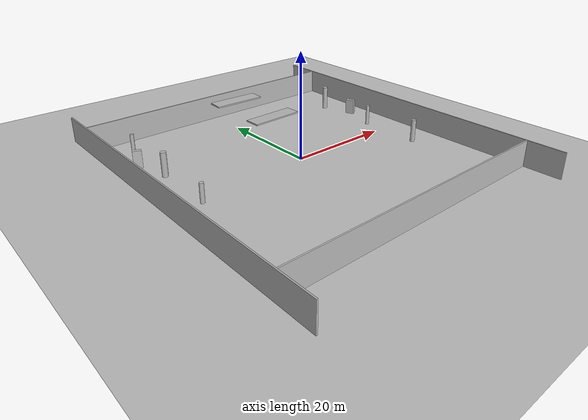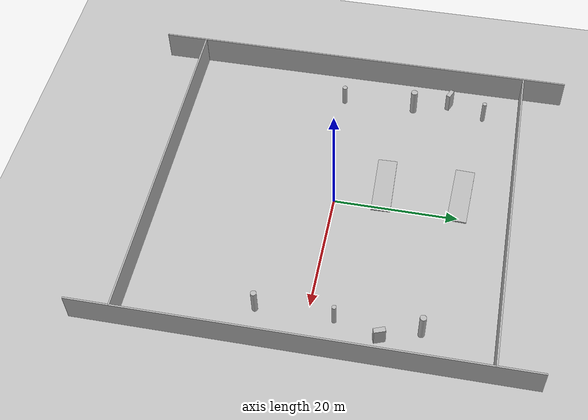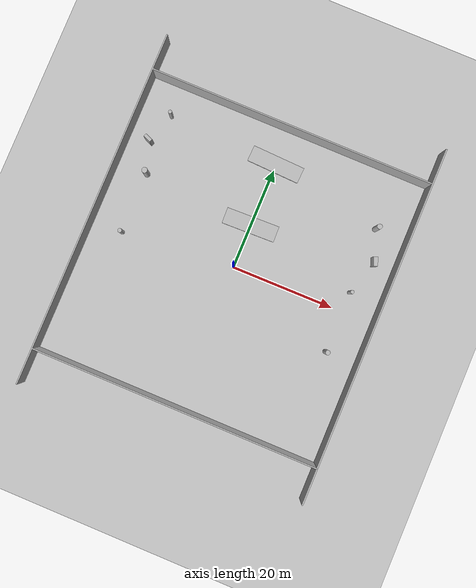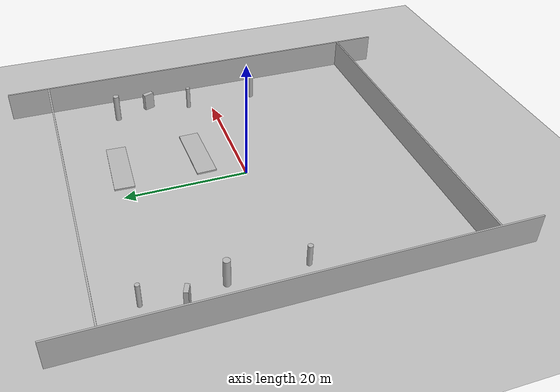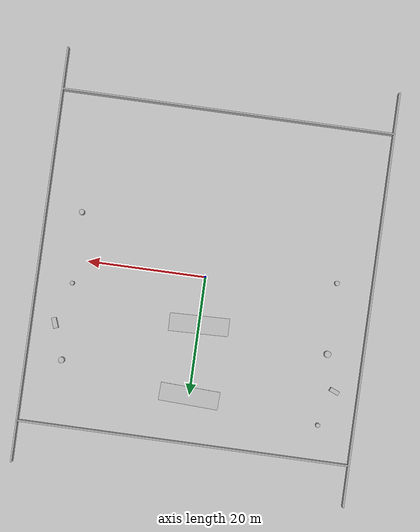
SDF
<sdf version="1.9">
 <world name="closed_loop_characterization">
  <physics type="ode">
   <max_step_size>0.004</max_step_size>
   <real_time_factor>0.8</real_time_factor>
   <real_time_update_rate>200</real_time_update_rate>
  </physics>
  <gravity>0 0 -9.8</gravity>
  <scene>
   <grid>true</grid>
   <ambient>0.4 0.4 0.4 1</ambient>
   <background>0.72 0.78 0.85 1</background>
   <shadows>true</shadows>
  </scene>
  <model name="ground_plane">
   <static>true</static>
   <link name="link">
    <collision name="collision">
     <geometry><plane><normal>0 0 1</normal><size>300 300</size></plane></geometry>
    </collision>
    <visual name="visual">
     <geometry><plane><normal>0 0 1</normal><size>300 300</size></plane></geometry>
     <material><ambient>0.75 0.75 0.75 1</ambient><diffuse>0.75 0.75 0.75 1</diffuse></material>
    </visual>
   </link>
  </model>
  <model name="characterization_wall_east">
   <static>true</static>
   <pose>28 0 2.5 0 0 0</pose>
   <link name="link">
    <collision name="collision"><geometry><box><size>0.25 70 5</size></box></geometry></collision>
    <visual name="visual"><geometry><box><size>0.25 70 5</size></box></geometry></visual>
   </link>
  </model>
  <model name="characterization_wall_west">
   <static>true</static>
   <pose>-28 0 2.5 0 0 0</pose>
   <link name="link">
    <collision name="collision"><geometry><box><size>0.25 70 5</size></box></geometry></collision>
    <visual name="visual"><geometry><box><size>0.25 70 5</size></box></geometry></visual>
   </link>
  </model>
  <model name="characterization_wall_north">
   <static>true</static>
   <pose>0 28 2.5 0 0 0</pose>
   <link name="link">
    <collision name="collision"><geometry><box><size>56 0.25 5</size></box></geometry></collision>
    <visual name="visual"><geometry><box><size>56 0.25 5</size></box></geometry></visual>
   </link>
  </model>
  <model name="characterization_wall_south">
   <static>true</static>
   <pose>0 -28 2.5 0 0 0</pose>
   <link name="link">
    <collision name="collision"><geometry><box><size>56 0.25 5</size></box></geometry></collision>
    <visual name="visual"><geometry><box><size>56 0.25 5</size></box></geometry></visual>
   </link>
  </model>
  <model name="texture_pillar_east_01">
   <static>true</static>
   <pose>22 -8 2.2 0 0 0.1</pose>
   <link name="link">
    <collision name="collision">
     <geometry><cylinder><radius>0.45</radius><length>4.4</length></cylinder></geometry>
    </collision>
    <visual name="visual">
     <geometry><cylinder><radius>0.45</radius><length>4.4</length></cylinder></geometry>
    </visual>
   </link>
  </model>
  <model name="texture_pillar_east_02">
   <static>true</static>
   <pose>22 4 2.0 0 0 -0.2</pose>
   <link name="link">
    <collision name="collision">
     <geometry><cylinder><radius>0.35</radius><length>4</length></cylinder></geometry>
    </collision>
    <visual name="visual">
     <geometry><cylinder><radius>0.35</radius><length>4</length></cylinder></geometry>
    </visual>
   </link>
  </model>
  <model name="texture_pillar_east_03">
   <static>true</static>
   <pose>22 17 2.4 0 0 0.3</pose>
   <link name="link">
    <collision name="collision">
     <geometry><cylinder><radius>0.5</radius><length>4.8</length></cylinder></geometry>
    </collision>
    <visual name="visual">
     <geometry><cylinder><radius>0.5</radius><length>4.8</length></cylinder></geometry>
    </visual>
   </link>
  </model>
  <model name="texture_pillar_west_01">
   <static>true</static>
   <pose>-22 -2 1.8 0 0 -0.1</pose>
   <link name="link">
    <collision name="collision">
     <geometry><cylinder><radius>0.4</radius><length>3.6</length></cylinder></geometry>
    </collision>
    <visual name="visual">
     <geometry><cylinder><radius>0.4</radius><length>3.6</length></cylinder></geometry>
    </visual>
   </link>
  </model>
  <model name="texture_pillar_west_02">
   <static>true</static>
   <pose>-22 10 2.3 0 0 0.2</pose>
   <link name="link">
    <collision name="collision">
     <geometry><cylinder><radius>0.55</radius><length>4.6</length></cylinder></geometry>
    </collision>
    <visual name="visual">
     <geometry><cylinder><radius>0.55</radius><length>4.6</length></cylinder></geometry>
    </visual>
   </link>
  </model>
  <model name="texture_pillar_west_03">
   <static>true</static>
   <pose>-22 22 2.0 0 0 -0.3</pose>
   <link name="link">
    <collision name="collision">
     <geometry><cylinder><radius>0.35</radius><length>4</length></cylinder></geometry>
    </collision>
    <visual name="visual">
     <geometry><cylinder><radius>0.35</radius><length>4</length></cylinder></geometry>
    </visual>
   </link>
  </model>
  <model name="texture_panel_east">
   <static>true</static>
   <pose>24 11 1.5 0 0 0.35</pose>
   <link name="link">
    <collision name="collision"><geometry><box><size>0.8 1.8 3</size></box></geometry></collision>
    <visual name="visual"><geometry><box><size>0.8 1.8 3</size></box></geometry></visual>
   </link>
  </model>
  <model name="texture_panel_west">
   <static>true</static>
   <pose>-24 16 1.7 0 0 -0.4</pose>
   <link name="link">
    <collision name="collision"><geometry><box><size>1.6 0.7 3.4</size></box></geometry></collision>
    <visual name="visual"><geometry><box><size>1.6 0.7 3.4</size></box></geometry></visual>
   </link>
  </model>
  <model name="texture_overhead_01">
   <static>true</static>
   <pose>0 8 6.0 0 0 0.03</pose>
   <link name="link">
    <collision name="collision"><geometry><box><size>10 3 0.25</size></box></geometry></collision>
    <visual name="visual"><geometry><box><size>10 3 0.25</size></box></geometry></visual>
   </link>
  </model>
  <model name="texture_overhead_02">
   <static>true</static>
   <pose>0 20 6.0 0 0 -0.04</pose>
   <link name="link">
    <collision name="collision"><geometry><box><size>10 3 0.25</size></box></geometry></collision>
    <visual name="visual"><geometry><box><size>10 3 0.25</size></box></geometry></visual>
   </link>
  </model>
  <light name="sunUTC" type="directional">
   <pose>0 0 500 0 0 0</pose>
   <intensity>1</intensity>
   <direction>0.001 0.625 -0.78</direction>
  </light>
  <spherical_coordinates>
   <surface_model>EARTH_WGS84</surface_model>
   <world_frame_orientation>ENU</world_frame_orientation>
   <latitude_deg>10.8231</latitude_deg>
   <longitude_deg>106.6297</longitude_deg>
   <elevation>10</elevation>
  </spherical_coordinates>
 </world>
</sdf>
